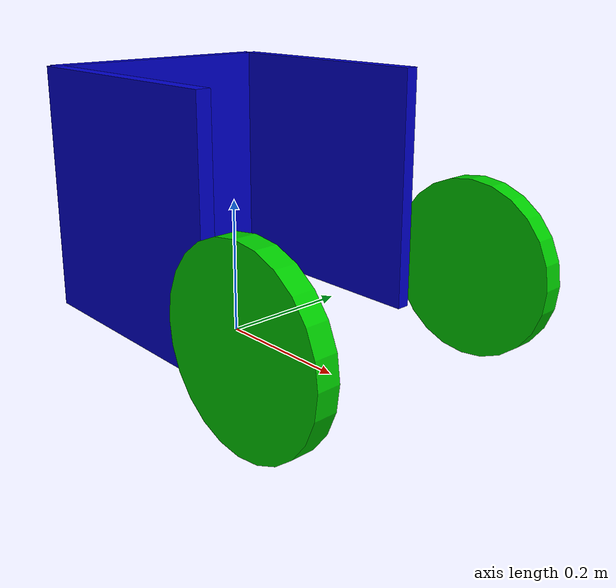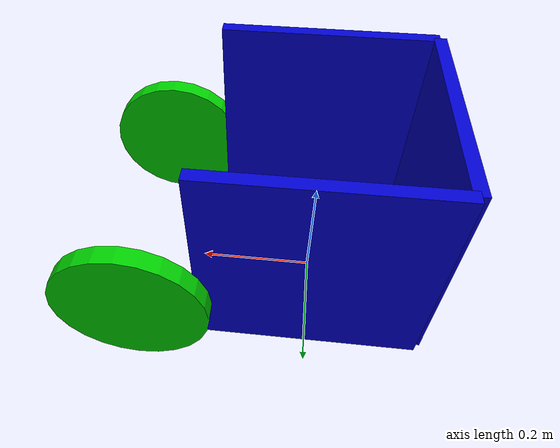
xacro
<?xml version="1.0"?>
<robot name="myrobot" xmlns:xacro = "http://www.ros.org/wiki/xacro">

    <material name="blue">
        <color rgba="0 0 0.8 1"/>
    </material>

    <material name="white">
        <color rgba="1 1 1 1"/>
    </material>

    <material name="green">
        <color rgba="0 0.8 0 1"/>
    </material>

    <material name="red">
        <color rgba="0.8 0 0 1"/>
    </material>

    <xacro:macro name="box_inertia" params="m w h d">
        <inertial>
            <mass value="${m}"/>
            <inertia ixx="${m / 12.0 * (d*d + h*h)}" ixy="0.0" ixz="0.0" iyy="${m / 12.0 * (w*w + h*h)}" iyz="0.0" izz="${m / 12.0 * (w*w + d*d)}"/>
            </inertial>
    </xacro:macro>

    <xacro:macro name="Rectangle_Panel" params="x y z roll pitch yaw">
        <inertial>
            <origin xyz="0 0 0" rpy="0 0 0"/>
            <mass value="3.978"/>
            <inertia ixx="0.062083" ixy="0.0" ixz="0.0"
                     iyy="0.020833" iyz="-0.0"
                     izz="0.042083"/>
        </inertial>
        <visual>
            <origin xyz="${x} ${y} ${z}" rpy="${roll} ${pitch} ${yaw}" />
            <geometry>
                <box size="0.35 0.02 0.35" />
            </geometry>
            <material name="blue" />
        </visual>
        <collision>
            <origin xyz="${x} ${y} ${z}" rpy="${roll} ${pitch} ${yaw}" />
            <geometry>
                <box size="0.35 0.02 0.35" />
            </geometry>
            <material name="blue" />
        </collision>
    </xacro:macro>

    <xacro:macro name="Wheel" params="prefix x y z roll pitch yaw">
        <link name="${prefix}_wheel">
            <visual>
                <geometry>
                    <cylinder length="0.03" radius="0.125"/>
                </geometry>
                <origin xyz="${x} ${y} ${z}" rpy="${roll} ${pitch} ${yaw}"/>
                <material name="green"/>
            </visual>
            <collision>
                <origin xyz="${x} ${y} ${z}" rpy="${roll} ${pitch} ${yaw}" />
                <geometry>
                    <cylinder length="0.03" radius="0.125"/>
                </geometry>
                <material name="green" />
            </collision>
            <inertial>
                <origin xyz="0 0 0" rpy="0 0 0"/>
                <mass value="3.978"/>
                <inertia ixx="0.021858680" ixy="0.0" ixz="0.010020353"
                        iyy="0.078572349" iyz="-0.0"
                        izz="0.091971324"/>
            </inertial>
        </link>
    </xacro:macro>

    <xacro:property name="DoorWidth" value="0.20" />
    <xacro:property name="DoorThickness" value="0.03" />
    <xacro:property name="DoorHeight" value="0.2" />

    <xacro:macro name="Door_Panel" params="x y z roll pitch yaw">
        <inertial>
            <origin xyz="0 0 0" rpy="0 0 0"/>
            <mass value="1.0"/>
            <inertia ixx="0.062083" ixy="0.0" ixz="0.0"
                     iyy="0.020833" iyz="-0.0"
                     izz="0.042083"/>
        </inertial>
        <visual>
            <origin xyz="${x} ${y} ${z}" rpy="${roll} ${pitch} ${yaw}" />
            <geometry>
                <box size="${DoorWidth} ${DoorThickness} ${DoorHeight}" />
            </geometry>
            <material name="blue" />
        </visual>
        <collision>
            <origin xyz="${x} ${y} ${z}" rpy="${roll} ${pitch} ${yaw}" />
            <geometry>
                <box size="${DoorWidth} ${DoorThickness} ${DoorHeight}" />
            </geometry>
            <material name="blue" />
        </collision>
    </xacro:macro>

    <link name="base_link">
        <xacro:Rectangle_Panel x="0.0" y="0.175" z="0.215" roll="0.0" pitch="0.0" yaw="0"/>
        <xacro:Rectangle_Panel x="0.0" y="-0.175" z="0.215" roll="0.0" pitch="0.0" yaw="0"/>
        <xacro:Rectangle_Panel x="-0.175" y="0.0" z="0.215" roll="0.0" pitch="0.0" yaw="1.5708"/>
    </link>

    <xacro:Wheel prefix="right" x="0.075" y="-0.200" z="0.125" roll="1.5708" pitch="0.0" yaw="0"/>
    <xacro:Wheel prefix="left" x="0.075" y="0.200" z="0.125" roll="1.5708" pitch="0.0" yaw="0"/>

    <joint name = "right_wheel_joint"  type = "continuous">
        <parent link="base_link"/>
        <child link="right_wheel"/>
        <origin xyz="0.200 0 0" rpy="0 0 0" />
        <axis xyz="0 1 0" rpy="0 0 0" />
    </joint>
    <joint name = "left_wheel_joint"  type = "continuous">
        <parent link="base_link"/>
        <child link="left_wheel"/>
        <origin xyz="0.200 0 0" rpy="0 0 0" />
        <axis xyz="0 1 0" rpy="0 0 0" />
    </joint>

  <gazebo>
    <plugin name="differential_drive_controller" filename="libgazebo_ros_diff_drive.so">
      <alwaysOn>false</alwaysOn>
      <legacyMode>false</legacyMode>
      <updateRate>20</updateRate>
      <leftJoint>left_wheel_joint</leftJoint>
      <rightJoint>right_wheel_joint</rightJoint>
      <wheelSeparation>0.62</wheelSeparation>
      <wheelDiameter>0.2</wheelDiameter>
      <torque>20</torque>
      <commandTopic>/rover/cmd_vel</commandTopic>
      <odometryTopic>/rover/odom</odometryTopic>
      <odometryFrame>odom</odometryFrame>
      <robotBaseFrame>base_link</robotBaseFrame>
    </plugin>
  </gazebo>

</robot>
